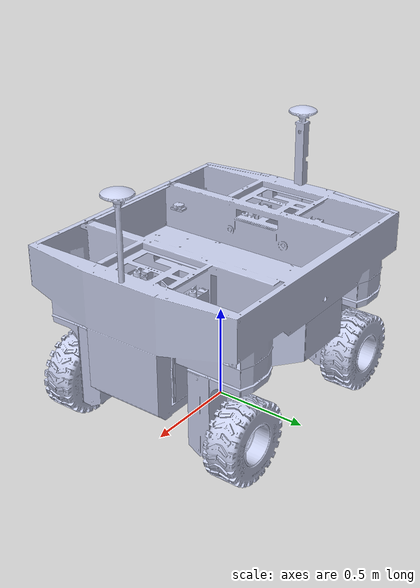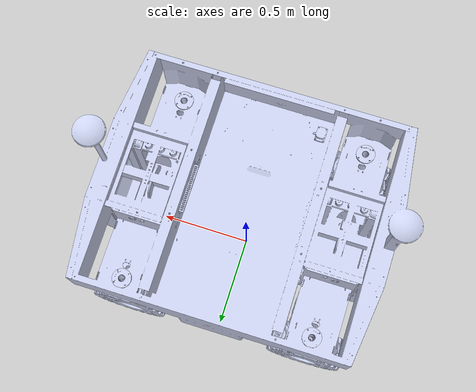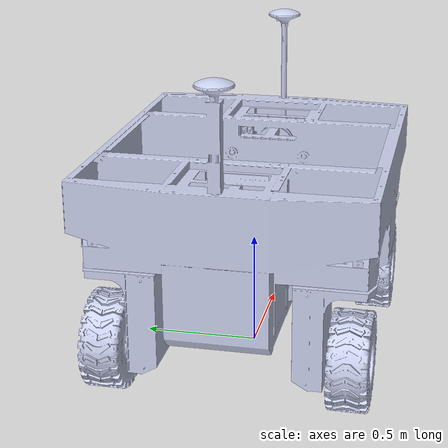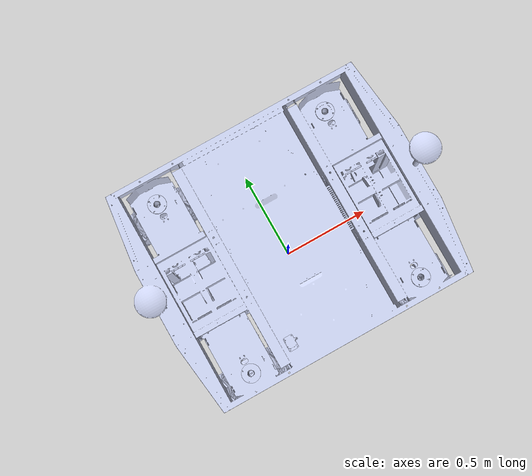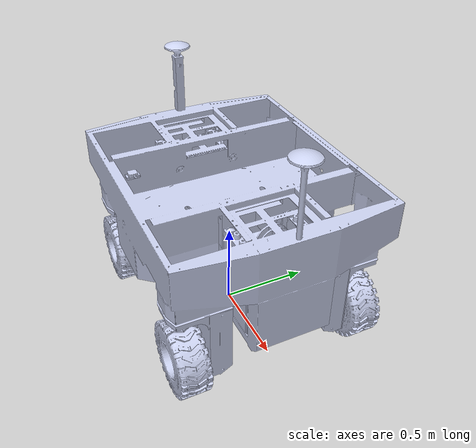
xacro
<?xml version="1.0" encoding="utf-8"?>
<robot
  name="lns_robot" xmlns:xacro="http://ros.org/wiki/xacro">

  <link name="base_footprint"/>

  <joint name="base_joint" type="fixed">
    <parent link="base_footprint"/>
    <child link="base_link"/>
    <origin xyz="0.0 0.0 0.5" rpy="0 0 0"/>
  </joint>

  <link
    name="base_link">
    <inertial>
      <origin
        xyz="-0.000908053234166831 0.00377583954880167 -0.11419353078418"
        rpy="0 0 0" />
      <mass
        value="115.323093862857" />
      <inertia
        ixx="30.5546981156896"
        ixy="-0.00812450775540023"
        ixz="0.0774264063877825"
        iyy="38.3082783112508"
        iyz="-0.141489346339812"
        izz="51.8584316288848" />
    </inertial>
    <visual>
      <origin
        xyz="0 0 0"
        rpy="0 0 0" />
      <geometry>
        <mesh
          filename="package://lns_description/meshes/base_link.STL" />
      </geometry>
      <material
        name="">
        <color
          rgba="0.792156862745098 0.819607843137255 0.933333333333333 1" />
      </material>
    </visual>
    <collision>
      <origin
        xyz="0 0 0"
        rpy="0 0 0" />
      <geometry>
        <box size="1.48 0.4 0.4" />
      </geometry>
    </collision>
  </link>
  <link
    name="gps_link">
    <inertial>
      <origin
        xyz="-0.720409053233766 0.00385628468290244 -0.975393530789188"
        rpy="0 0 0" />
      <mass
        value="115.323093862857" />
      <inertia
        ixx="30.5546981156896"
        ixy="-0.00812450775540023"
        ixz="0.0774264063877825"
        iyy="38.3082783112508"
        iyz="-0.141489346339812"
        izz="51.8584316288848" />
    </inertial>
    <visual>
      <origin
        xyz="0 0 0"
        rpy="0 0 0" />
      <geometry>
        <mesh
          filename="package://lns_description/meshes/gps_link.STL" />
      </geometry>
      <material
        name="">
        <color
          rgba="0.792156862745098 0.819607843137255 0.933333333333333 1" />
      </material>
    </visual>
  </link>
  <joint
    name="gps_joint"
    type="fixed">
    <origin
      xyz="0.7195 -8.0445E-05 0.8612"
      rpy="0 0 0" />
    <parent
      link="base_link" />
    <child
      link="gps_link" />
    <axis
      xyz="0 0 0" />
  </joint>
  <link
    name="imu_link">
    <inertial>
      <origin
        xyz="0.249441946765716 0.469559838074302 -0.480293530777087"
        rpy="0 0 0" />
      <mass
        value="115.323093862857" />
      <inertia
        ixx="30.5546981156899"
        ixy="-0.00812450775584025"
        ixz="0.077426406419204"
        iyy="38.3082783112512"
        iyz="-0.141489346361371"
        izz="51.8584316288841" />
    </inertial>
    <visual>
      <origin
        xyz="0 0 0"
        rpy="0 0 0" />
      <geometry>
        <mesh
          filename="package://lns_description/meshes/imu_link.STL" />
      </geometry>
      <material
        name="">
        <color
          rgba="0.792156862745098 0.819607843137255 0.933333333333333 1" />
      </material>
    </visual>
    <collision>
      <origin
        xyz="0.25 0.465 0"
        rpy="0 0 0" />
      <geometry>
        <box size="1.45 1.2 0.2" />
      </geometry>
    </collision>
  </link>
  <joint
    name="imu_joint"
    type="fixed">
    <origin
      xyz="-0.25035 -0.46578 0.3661"
      rpy="0 0 0" />
    <parent
      link="base_link" />
    <child
      link="imu_link" />
    <axis
      xyz="0 0 0" />
  </joint>
  <link
    name="steering_fl_link">
    <inertial>
      <origin
        xyz="-0.500908053234454 -0.496143715201307 -0.252993530926179"
        rpy="0 0 0" />
      <mass
        value="115.323093862857" />
      <inertia
        ixx="30.5546981156896"
        ixy="-0.00812450775540023"
        ixz="0.0774264063877825"
        iyy="38.3082783112508"
        iyz="-0.141489346339812"
        izz="51.8584316288848" />
    </inertial>
    <visual>
      <origin
        xyz="0 0 0"
        rpy="0 0 0" />
      <geometry>
        <mesh
          filename="package://lns_description/meshes/steering_fl_link.STL" />
      </geometry>
      <material
        name="">
        <color
          rgba="0.792156862745098 0.819607843137255 0.933333333333333 1" />
      </material>
    </visual>
    <collision>
      <origin
        xyz="0 -0.16 -0.25"
        rpy="0 0 0" />
      <geometry>
        <box size="0.25 0.1 0.5" />
      </geometry>
    </collision>
  </link>
  <joint
    name="steering_fl_joint"
    type="revolute">
    <origin
      xyz="0.5 0.49992 0.1388"
      rpy="0 0 0" />
    <parent
      link="base_link" />
    <child
      link="steering_fl_link" />
    <axis
      xyz="0 0 1" />
    <limit
      lower="-2.1"
      upper="2.1"
      effort="5"
      velocity="6.28" />
  </joint>
  <link
    name="wheel_fl_link">
    <inertial>
      <origin
        xyz="-0.500915043003825 -0.473143716438484 0.180006469083252"
        rpy="0 0 0" />
      <mass
        value="115.323093862857" />
      <inertia
        ixx="30.5546981156896"
        ixy="-0.00812450775540023"
        ixz="0.0774264063877825"
        iyy="38.3082783112508"
        iyz="-0.141489346339812"
        izz="51.8584316288848" />
    </inertial>
    <visual>
      <origin
        xyz="0 0 0"
        rpy="0 0 0" />
      <geometry>
        <mesh
          filename="package://lns_description/meshes/wheel_fl_link.STL" />
      </geometry>
      <material
        name="">
        <color
          rgba="0.792156862745098 0.819607843137255 0.933333333333333 1" />
      </material>
    </visual>
    <collision>
      <origin
        xyz="0 0.025 0"
        rpy="1.5705963 0 0" />
      <geometry>
        <cylinder length="0.16" radius="0.2" />
      </geometry>
    </collision>
  </link>
  <joint
    name="wheel_fl_joint"
    type="continuous">
    <origin
      xyz="0 -0.023 -0.433"
      rpy="0 0 0" />
    <parent
      link="steering_fl_link" />
    <child
      link="wheel_fl_link" />
    <axis
      xyz="-0.0003039 1 0" />
    <limit
      effort="1000"
      velocity="20" />
  </joint>
  <link
    name="steering_fr_link">
    <inertial>
      <origin
        xyz="-0.50090805326955 0.501356284795344 -0.25299353052279"
        rpy="0 0 0" />
      <mass
        value="115.323093862857" />
      <inertia
        ixx="30.5546981156896"
        ixy="-0.00812450775540023"
        ixz="0.0774264063877825"
        iyy="38.3082783112508"
        iyz="-0.141489346339812"
        izz="51.8584316288848" />
    </inertial>
    <visual>
      <origin
        xyz="0 0 0"
        rpy="0 0 0" />
      <geometry>
        <mesh
          filename="package://lns_description/meshes/steering_fr_link.STL" />
      </geometry>
      <material
        name="">
        <color
          rgba="0.792156862745098 0.819607843137255 0.933333333333333 1" />
      </material>
    </visual>
    <collision>
      <origin
        xyz="0 0.16 -0.25"
        rpy="0 0 0" />
      <geometry>
        <box size="0.25 0.1 0.5" />
      </geometry>
    </collision>
  </link>
  <joint
    name="steering_fr_joint"
    type="revolute">
    <origin
      xyz="0.5 -0.49758 0.1388"
      rpy="0 0 0" />
    <parent
      link="base_link" />
    <child
      link="steering_fr_link" />
    <axis
      xyz="0 0 1" />
    <limit
      lower="-2.1"
      upper="2.1"
      effort="5"
      velocity="6.28" />
  </joint>
  <link
    name="wheel_fr_link">
    <inertial>
      <origin
        xyz="-0.500854029674087 0.478356348066843 0.180006469468029"
        rpy="0 0 0" />
      <mass
        value="115.323093862857" />
      <inertia
        ixx="30.5546981156896"
        ixy="-0.00812450775540023"
        ixz="0.0774264063877825"
        iyy="38.3082783112508"
        iyz="-0.141489346339812"
        izz="51.8584316288848" />
    </inertial>
    <visual>
      <origin
        xyz="0 0 0"
        rpy="0 0 0" />
      <geometry>
        <mesh
          filename="package://lns_description/meshes/wheel_fr_link.STL" />
      </geometry>
      <material
        name="">
        <color
          rgba="0.792156862745098 0.819607843137255 0.933333333333333 1" />
      </material>
    </visual>
    <collision>
      <origin
        xyz="0 -0.025 0"
        rpy="1.5705963 0 0" />
      <geometry>
        <cylinder length="0.16" radius="0.2" />
      </geometry>
    </collision>
  </link>
  <joint
    name="wheel_fr_joint"
    type="continuous">
    <origin
      xyz="-5.4024E-05 0.023 -0.433"
      rpy="0 0 0" />
    <parent
      link="steering_fr_link" />
    <child
      link="wheel_fr_link" />
    <axis
      xyz="0.0023488 1 0" />
    <limit
      effort="1000"
      velocity="20" />
  </joint>
  <link
    name="steering_br_link">
    <inertial>
      <origin
        xyz="0.499091946762458 0.501356284680084 -0.252993530769525"
        rpy="0 0 0" />
      <mass
        value="115.323093862857" />
      <inertia
        ixx="30.5546981156896"
        ixy="-0.00812450775540023"
        ixz="0.0774264063877825"
        iyy="38.3082783112508"
        iyz="-0.141489346339812"
        izz="51.8584316288848" />
    </inertial>
    <visual>
      <origin
        xyz="0 0 0"
        rpy="0 0 0" />
      <geometry>
        <mesh
          filename="package://lns_description/meshes/steering_br_link.STL" />
      </geometry>
      <material
        name="">
        <color
          rgba="0.792156862745098 0.819607843137255 0.933333333333333 1" />
      </material>
    </visual>
    <collision>
      <origin
        xyz="0 0.16 -0.25"
        rpy="0 0 0" />
      <geometry>
        <box size="0.25 0.1 0.5" />
      </geometry>
    </collision>
  </link>
  <joint
    name="steering_br_joint"
    type="revolute">
    <origin
      xyz="-0.5 -0.49758 0.1388"
      rpy="0 0 0" />
    <parent
      link="base_link" />
    <child
      link="steering_br_link" />
    <axis
      xyz="0 0 1" />
    <limit
      lower="-2.1"
      upper="2.1"
      effort="5"
      velocity="6.28" />
  </joint>
  <link
    name="wheel_br_link">
    <inertial>
      <origin
        xyz="0.49914597035792 0.478356348127517 0.18000646923064"
        rpy="0 0 0" />
      <mass
        value="115.323093862857" />
      <inertia
        ixx="30.5546981156896"
        ixy="-0.00812450775540023"
        ixz="0.0774264063877825"
        iyy="38.3082783112508"
        iyz="-0.141489346339812"
        izz="51.8584316288848" />
    </inertial>
    <visual>
      <origin
        xyz="0 0 0"
        rpy="0 0 0" />
      <geometry>
        <mesh
          filename="package://lns_description/meshes/wheel_br_link.STL" />
      </geometry>
      <material
        name="">
        <color
          rgba="0.792156862745098 0.819607843137255 0.933333333333333 1" />
      </material>
    </visual>
    <collision>
      <origin
        xyz="0 -0.025 0"
        rpy="1.5705963 0 0" />
      <geometry>
        <cylinder length="0.16" radius="0.2" />
      </geometry>
    </collision>
  </link>
  <joint
    name="wheel_br_joint"
    type="continuous">
    <origin
      xyz="-5.4024E-05 0.023 -0.433"
      rpy="0 0 0" />
    <parent
      link="steering_br_link" />
    <child
      link="wheel_br_link" />
    <axis
      xyz="0.0023488 1 0" />
    <limit
      effort="1000"
      velocity="20" />
  </joint>
  <link
    name="steering_bl_link">
    <inertial>
      <origin
        xyz="0.499091946761391 -0.49614371520285 -0.252993531055122"
        rpy="0 0 0" />
      <mass
        value="115.323093862857" />
      <inertia
        ixx="30.5546981156896"
        ixy="-0.00812450775540023"
        ixz="0.0774264063877825"
        iyy="38.3082783112508"
        iyz="-0.141489346339812"
        izz="51.8584316288848" />
    </inertial>
    <visual>
      <origin
        xyz="0 0 0"
        rpy="0 0 0" />
      <geometry>
        <mesh
          filename="package://lns_description/meshes/steering_bl_link.STL" />
      </geometry>
      <material
        name="">
        <color
          rgba="0.792156862745098 0.819607843137255 0.933333333333333 1" />
      </material>
    </visual>
    <collision>
      <origin
        xyz="0 -0.16 -0.25"
        rpy="0 0 0" />
      <geometry>
        <box size="0.25 0.1 0.5" />
      </geometry>
    </collision>
  </link>
  <joint
    name="steering_bl_joint"
    type="revolute">
    <origin
      xyz="-0.5 0.49992 0.1388"
      rpy="0 0 0" />
    <parent
      link="base_link" />
    <child
      link="steering_bl_link" />
    <axis
      xyz="0 0 1" />
    <limit
      lower="-2.1"
      upper="2.1"
      effort="5"
      velocity="6.28" />
  </joint>
  <link
    name="wheel_bl_link">
    <inertial>
      <origin
        xyz="0.499037923277592 -0.473143778824593 0.180006468954316"
        rpy="0 0 0" />
      <mass
        value="115.323093862857" />
      <inertia
        ixx="30.5546981156896"
        ixy="-0.00812450775540023"
        ixz="0.0774264063877825"
        iyy="38.3082783112508"
        iyz="-0.141489346339812"
        izz="51.8584316288848" />
    </inertial>
    <visual>
      <origin
        xyz="0 0 0"
        rpy="0 0 0" />
      <geometry>
        <mesh
          filename="package://lns_description/meshes/wheel_bl_link.STL" />
      </geometry>
      <material
        name="">
        <color
          rgba="0.792156862745098 0.819607843137255 0.933333333333333 1" />
      </material>
    </visual>
    <collision>
      <origin
        xyz="0 0.025 0"
        rpy="1.5705963 0 0" />
      <geometry>
        <cylinder length="0.16" radius="0.2" />
      </geometry>
    </collision>
  </link>
  <joint
    name="wheel_bl_joint"
    type="continuous">
    <origin
      xyz="5.4023E-05 -0.023 -0.433"
      rpy="0 0 0" />
    <parent
      link="steering_bl_link" />
    <child
      link="wheel_bl_link" />
    <axis
      xyz="-0.0023488 1 0" />
    <limit
      effort="1000"
      velocity="20" />
  </joint>
</robot>
